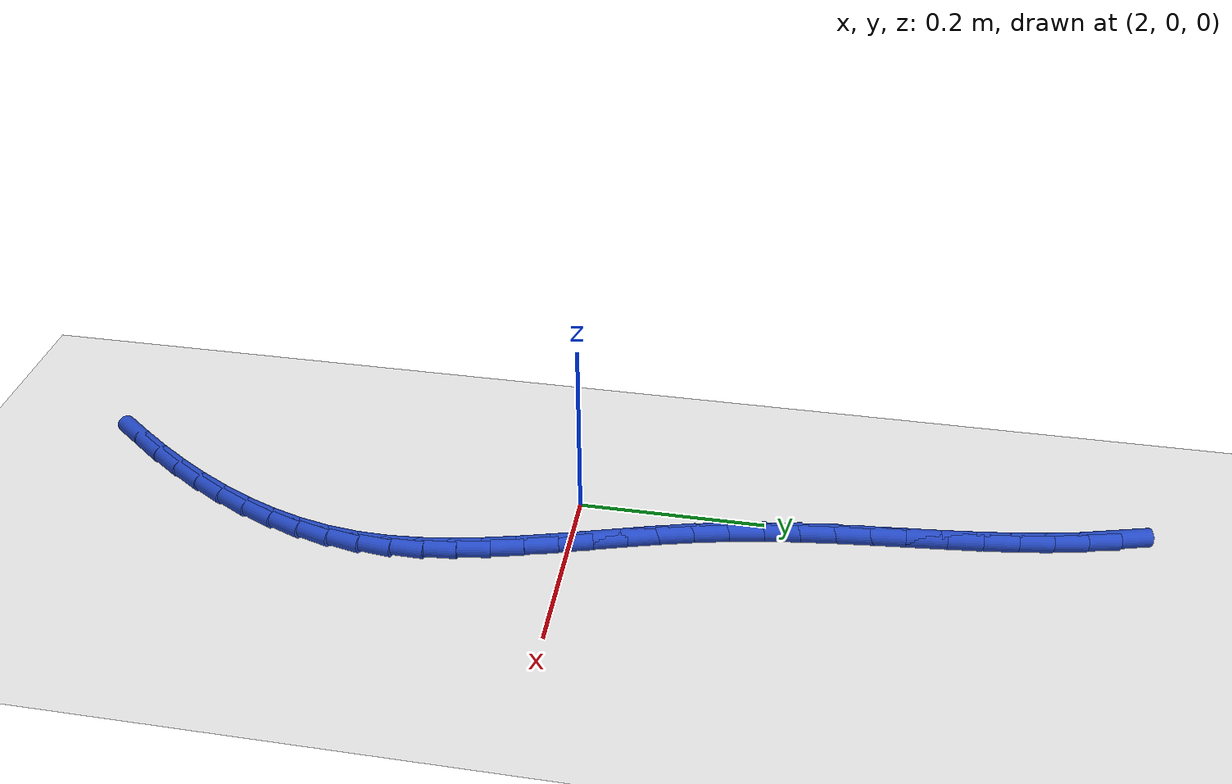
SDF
<sdf version="1.6">
 <world name="default">
  <model name="ground_plane">
   <static>1</static>
   <link name="link">
    <collision name="collision">
     <geometry><plane><normal>0 0 1</normal><size>100 100</size></plane></geometry>
     <surface><friction><ode><mu>100</mu><mu2>50</mu2></ode></friction></surface>
    </collision>
    <visual name="visual">
     <cast_shadows>0</cast_shadows>
     <geometry><plane><normal>0 0 1</normal><size>100 100</size></plane></geometry>
     <material>
      <script><uri>file://media/materials/scripts/gazebo.material</uri><name>Gazebo/WhiteGlow</name></script>
     </material>
    </visual>
   </link>
  </model>
  <model name="line">
   <link name="link_79">
    <pose>1.9718474011377136 0.5604335310703656 0.01 0 1.57 -1.310990582640275</pose>
    <collision name="collision">
     <geometry><cylinder><radius>0.01</radius><length>0.08</length></cylinder></geometry>
    </collision>
    <visual name="visual">
     <material>
      <script><name>Gazebo/Blue</name><uri>file://media/materials/scripts/gazebo.material</uri></script>
     </material>
     <geometry><cylinder><radius>0.01</radius><length>0.08</length></cylinder></geometry>
    </visual>
   </link>
   <link name="link_80">
    <pose>1.9806159194786548 0.5274460541226066 0.01 0 1.57 -1.368073745830297</pose>
    <collision name="collision">
     <geometry><cylinder><radius>0.01</radius><length>0.08</length></cylinder></geometry>
    </collision>
    <visual name="visual">
     <material>
      <script><name>Gazebo/Blue</name><uri>file://media/materials/scripts/gazebo.material</uri></script>
     </material>
     <geometry><cylinder><radius>0.01</radius><length>0.08</length></cylinder></geometry>
    </visual>
   </link>
   <link name="link_81">
    <pose>1.9876197335854549 0.4933718714449497 0.01 0 1.57 -1.4126947714392184</pose>
    <collision name="collision">
     <geometry><cylinder><radius>0.01</radius><length>0.08</length></cylinder></geometry>
    </collision>
    <visual name="visual">
     <material>
      <script><name>Gazebo/Blue</name><uri>file://media/materials/scripts/gazebo.material</uri></script>
     </material>
     <geometry><cylinder><radius>0.01</radius><length>0.08</length></cylinder></geometry>
    </visual>
   </link>
   <link name="link_82">
    <pose>1.9932003908443252 0.45836853861322663 0.01 0 1.57 -1.445693289339995</pose>
    <collision name="collision">
     <geometry><cylinder><radius>0.01</radius><length>0.08</length></cylinder></geometry>
    </collision>
    <visual name="visual">
     <material>
      <script><name>Gazebo/Blue</name><uri>file://media/materials/scripts/gazebo.material</uri></script>
     </material>
     <geometry><cylinder><radius>0.01</radius><length>0.08</length></cylinder></geometry>
    </visual>
   </link>
   <link name="link_83">
    <pose>1.997699438641478 0.42259361120326927 0.01 0 1.57 -1.4678612770690267</pose>
    <collision name="collision">
     <geometry><cylinder><radius>0.01</radius><length>0.08</length></cylinder></geometry>
    </collision>
    <visual name="visual">
     <material>
      <script><name>Gazebo/Blue</name><uri>file://media/materials/scripts/gazebo.material</uri></script>
     </material>
     <geometry><cylinder><radius>0.01</radius><length>0.08</length></cylinder></geometry>
    </visual>
   </link>
   <link name="link_84">
    <pose>2.001458424363125 0.3862046447909082 0.01 0 1.57 -1.4798434542501462</pose>
    <collision name="collision">
     <geometry><cylinder><radius>0.01</radius><length>0.08</length></cylinder></geometry>
    </collision>
    <visual name="visual">
     <material>
      <script><name>Gazebo/Blue</name><uri>file://media/materials/scripts/gazebo.material</uri></script>
     </material>
     <geometry><cylinder><radius>0.01</radius><length>0.08</length></cylinder></geometry>
    </visual>
   </link>
   <link name="link_85">
    <pose>2.0048188953954775 0.3493591949519752 0.01 0 1.57 -1.4820928658127737</pose>
    <collision name="collision">
     <geometry><cylinder><radius>0.01</radius><length>0.08</length></cylinder></geometry>
    </collision>
    <visual name="visual">
     <material>
      <script><name>Gazebo/Blue</name><uri>file://media/materials/scripts/gazebo.material</uri></script>
     </material>
     <geometry><cylinder><radius>0.01</radius><length>0.08</length></cylinder></geometry>
    </visual>
   </link>
   <link name="link_86">
    <pose>2.0081223991247477 0.3122148172623018 0.01 0 1.57 -1.4748597019320595</pose>
    <collision name="collision">
     <geometry><cylinder><radius>0.01</radius><length>0.08</length></cylinder></geometry>
    </collision>
    <visual name="visual">
     <material>
      <script><name>Gazebo/Blue</name><uri>file://media/materials/scripts/gazebo.material</uri></script>
     </material>
     <geometry><cylinder><radius>0.01</radius><length>0.08</length></cylinder></geometry>
    </visual>
   </link>
   <link name="link_87">
    <pose>2.0117104829371475 0.27492906729771893 0.01 0 1.57 -1.458200778438653</pose>
    <collision name="collision">
     <geometry><cylinder><radius>0.01</radius><length>0.08</length></cylinder></geometry>
    </collision>
    <visual name="visual">
     <material>
      <script><name>Gazebo/Blue</name><uri>file://media/materials/scripts/gazebo.material</uri></script>
     </material>
     <geometry><cylinder><radius>0.01</radius><length>0.08</length></cylinder></geometry>
    </visual>
   </link>
   <link name="link_88">
    <pose>2.015924694218888 0.23765950063405814 0.01 0 1.57 -1.4320052335068707</pose>
    <collision name="collision">
     <geometry><cylinder><radius>0.01</radius><length>0.08</length></cylinder></geometry>
    </collision>
    <visual name="visual">
     <material>
      <script><name>Gazebo/Blue</name><uri>file://media/materials/scripts/gazebo.material</uri></script>
     </material>
     <geometry><cylinder><radius>0.01</radius><length>0.08</length></cylinder></geometry>
    </visual>
   </link>
   <link name="link_89">
    <pose>2.0211065803561823 0.20056367284715093 0.01 0 1.57 -1.3960385786762433</pose>
    <collision name="collision">
     <geometry><cylinder><radius>0.01</radius><length>0.08</length></cylinder></geometry>
    </collision>
    <visual name="visual">
     <material>
      <script><name>Gazebo/Blue</name><uri>file://media/materials/scripts/gazebo.material</uri></script>
     </material>
     <geometry><cylinder><radius>0.01</radius><length>0.08</length></cylinder></geometry>
    </visual>
   </link>
   <link name="link_90">
    <pose>2.0275976826189246 0.16379913798144463 0.01 0 1.57 -1.3540749856608922</pose>
    <collision name="collision">
     <geometry><cylinder><radius>0.01</radius><length>0.08</length></cylinder></geometry>
    </collision>
    <visual name="visual">
     <material>
      <script><name>Gazebo/Blue</name><uri>file://media/materials/scripts/gazebo.material</uri></script>
     </material>
     <geometry><cylinder><radius>0.01</radius><length>0.08</length></cylinder></geometry>
    </visual>
   </link>
   <link name="link_91">
    <pose>2.03559292181869 0.12748673969909746 0.01 0 1.57 -1.3205813483886362</pose>
    <collision name="collision">
     <geometry><cylinder><radius>0.01</radius><length>0.08</length></cylinder></geometry>
    </collision>
    <visual name="visual">
     <material>
      <script><name>Gazebo/Blue</name><uri>file://media/materials/scripts/gazebo.material</uri></script>
     </material>
     <geometry><cylinder><radius>0.01</radius><length>0.08</length></cylinder></geometry>
    </visual>
   </link>
   <link name="link_92">
    <pose>2.044760577369315 0.09161546279849983 0.01 0 1.57 -1.2988771034930866</pose>
    <collision name="collision">
     <geometry><cylinder><radius>0.01</radius><length>0.08</length></cylinder></geometry>
    </collision>
    <visual name="visual">
     <material>
      <script><name>Gazebo/Blue</name><uri>file://media/materials/scripts/gazebo.material</uri></script>
     </material>
     <geometry><cylinder><radius>0.01</radius><length>0.08</length></cylinder></geometry>
    </visual>
   </link>
   <link name="link_93">
    <pose>2.0546507298339844 0.05614469781102788 0.01 0 1.57 -1.2890491829731943</pose>
    <collision name="collision">
     <geometry><cylinder><radius>0.01</radius><length>0.08</length></cylinder></geometry>
    </collision>
    <visual name="visual">
     <material>
      <script><name>Gazebo/Blue</name><uri>file://media/materials/scripts/gazebo.material</uri></script>
     </material>
     <geometry><cylinder><radius>0.01</radius><length>0.08</length></cylinder></geometry>
    </visual>
   </link>
   <link name="link_94">
    <pose>2.064813459775885 0.021033835268056515 0.01 0 1.57 -1.2913028820206467</pose>
    <collision name="collision">
     <geometry><cylinder><radius>0.01</radius><length>0.08</length></cylinder></geometry>
    </collision>
    <visual name="visual">
     <material>
      <script><name>Gazebo/Blue</name><uri>file://media/materials/scripts/gazebo.material</uri></script>
     </material>
     <geometry><cylinder><radius>0.01</radius><length>0.08</length></cylinder></geometry>
    </visual>
   </link>
   <link name="link_95">
    <pose>2.074798847758202 -0.013757734299038163 0.01 0 1.57 -1.306014087798718</pose>
    <collision name="collision">
     <geometry><cylinder><radius>0.01</radius><length>0.08</length></cylinder></geometry>
    </collision>
    <visual name="visual">
     <material>
      <script><name>Gazebo/Blue</name><uri>file://media/materials/scripts/gazebo.material</uri></script>
     </material>
     <geometry><cylinder><radius>0.01</radius><length>0.08</length></cylinder></geometry>
    </visual>
   </link>
   <link name="link_96">
    <pose>2.0841569743441224 -0.04827062035888042 0.01 0 1.57 -1.3337348697897142</pose>
    <collision name="collision">
     <geometry><cylinder><radius>0.01</radius><length>0.08</length></cylinder></geometry>
    </collision>
    <visual name="visual">
     <material>
      <script><name>Gazebo/Blue</name><uri>file://media/materials/scripts/gazebo.material</uri></script>
     </material>
     <geometry><cylinder><radius>0.01</radius><length>0.08</length></cylinder></geometry>
    </visual>
   </link>
   <link name="link_97">
    <pose>2.0924379200968306 -0.08254543238009457 0.01 0 1.57 -1.3751401748338485</pose>
    <collision name="collision">
     <geometry><cylinder><radius>0.01</radius><length>0.08</length></cylinder></geometry>
    </collision>
    <visual name="visual">
     <material>
      <script><name>Gazebo/Blue</name><uri>file://media/materials/scripts/gazebo.material</uri></script>
     </material>
     <geometry><cylinder><radius>0.01</radius><length>0.08</length></cylinder></geometry>
    </visual>
   </link>
   <link name="link_98">
    <pose>2.0991917655795143 -0.11662277983130422 0.01 0 1.57 -1.4308921329676663</pose>
    <collision name="collision">
     <geometry><cylinder><radius>0.01</radius><length>0.08</length></cylinder></geometry>
    </collision>
    <visual name="visual">
     <material>
      <script><name>Gazebo/Blue</name><uri>file://media/materials/scripts/gazebo.material</uri></script>
     </material>
     <geometry><cylinder><radius>0.01</radius><length>0.08</length></cylinder></geometry>
    </visual>
   </link>
   <link name="link_99">
    <pose>2.103968591355358 -0.150543272181135 0.01 0 1.57 -1.501393435140677</pose>
    <collision name="collision">
     <geometry><cylinder><radius>0.01</radius><length>0.08</length></cylinder></geometry>
    </collision>
    <visual name="visual">
     <material>
      <script><name>Gazebo/Blue</name><uri>file://media/materials/scripts/gazebo.material</uri></script>
     </material>
     <geometry><cylinder><radius>0.01</radius><length>0.08</length></cylinder></geometry>
    </visual>
   </link>
   <link name="link_100">
    <pose>2.106318477987549 -0.1843475188982106 0.01 0 1.57 1.5551737124343596</pose>
    <collision name="collision">
     <geometry><cylinder><radius>0.01</radius><length>0.08</length></cylinder></geometry>
    </collision>
    <visual name="visual">
     <material>
      <script><name>Gazebo/Blue</name><uri>file://media/materials/scripts/gazebo.material</uri></script>
     </material>
     <geometry><cylinder><radius>0.01</radius><length>0.08</length></cylinder></geometry>
    </visual>
   </link>
   <link name="link_101">
    <pose>2.1057915060392736 -0.2180761294511553 0.01 0 1.57 1.4592120469555023</pose>
    <collision name="collision">
     <geometry><cylinder><radius>0.01</radius><length>0.08</length></cylinder></geometry>
    </collision>
    <visual name="visual">
     <material>
      <script><name>Gazebo/Blue</name><uri>file://media/materials/scripts/gazebo.material</uri></script>
     </material>
     <geometry><cylinder><radius>0.01</radius><length>0.08</length></cylinder></geometry>
    </visual>
   </link>
   <link name="link_102">
    <pose>2.1020176512418858 -0.251756312412121 0.01 0 1.57 1.3677379419934794</pose>
    <collision name="collision">
     <geometry><cylinder><radius>0.01</radius><length>0.08</length></cylinder></geometry>
    </collision>
    <visual name="visual">
     <material>
      <script><name>Gazebo/Blue</name><uri>file://media/materials/scripts/gazebo.material</uri></script>
     </material>
     <geometry><cylinder><radius>0.01</radius><length>0.08</length></cylinder></geometry>
    </visual>
   </link>
   <link name="link_103">
    <pose>2.095103875340456 -0.28533527101207284 0.01 0 1.57 1.286170203673188</pose>
    <collision name="collision">
     <geometry><cylinder><radius>0.01</radius><length>0.08</length></cylinder></geometry>
    </collision>
    <visual name="visual">
     <material>
      <script><name>Gazebo/Blue</name><uri>file://media/materials/scripts/gazebo.material</uri></script>
     </material>
     <geometry><cylinder><radius>0.01</radius><length>0.08</length></cylinder></geometry>
    </visual>
   </link>
   <link name="link_104">
    <pose>2.0853334018109346 -0.318730643925549 0.01 0 1.57 1.2141404615179374</pose>
    <collision name="collision">
     <geometry><cylinder><radius>0.01</radius><length>0.08</length></cylinder></geometry>
    </collision>
    <visual name="visual">
     <material>
      <script><name>Gazebo/Blue</name><uri>file://media/materials/scripts/gazebo.material</uri></script>
     </material>
     <geometry><cylinder><radius>0.01</radius><length>0.08</length></cylinder></geometry>
    </visual>
   </link>
   <link name="link_105">
    <pose>2.072989736307974 -0.3518600224969714 0.01 0 1.57 1.1509421181993258</pose>
    <collision name="collision">
     <geometry><cylinder><radius>0.01</radius><length>0.08</length></cylinder></geometry>
    </collision>
    <visual name="visual">
     <material>
      <script><name>Gazebo/Blue</name><uri>file://media/materials/scripts/gazebo.material</uri></script>
     </material>
     <geometry><cylinder><radius>0.01</radius><length>0.08</length></cylinder></geometry>
    </visual>
   </link>
   <link name="link_106">
    <pose>2.0583563844862236 -0.3846409980707642 0.01 0 1.57 1.0957292160969216</pose>
    <collision name="collision">
     <geometry><cylinder><radius>0.01</radius><length>0.08</length></cylinder></geometry>
    </collision>
    <visual name="visual">
     <material>
      <script><name>Gazebo/Blue</name><uri>file://media/materials/scripts/gazebo.material</uri></script>
     </material>
     <geometry><cylinder><radius>0.01</radius><length>0.08</length></cylinder></geometry>
    </visual>
   </link>
   <link name="link_107">
    <pose>2.041716852000336 -0.41699116199134934 0.01 0 1.57 1.0476419713817118</pose>
    <collision name="collision">
     <geometry><cylinder><radius>0.01</radius><length>0.08</length></cylinder></geometry>
    </collision>
    <visual name="visual">
     <material>
      <script><name>Gazebo/Blue</name><uri>file://media/materials/scripts/gazebo.material</uri></script>
     </material>
     <geometry><cylinder><radius>0.01</radius><length>0.08</length></cylinder></geometry>
    </visual>
   </link>
   <link name="link_108">
    <pose>2.0233546445049604 -0.4488281056031492 0.01 0 1.57 1.0058795108670702</pose>
    <collision name="collision">
     <geometry><cylinder><radius>0.01</radius><length>0.08</length></cylinder></geometry>
    </collision>
    <visual name="visual">
     <material>
      <script><name>Gazebo/Blue</name><uri>file://media/materials/scripts/gazebo.material</uri></script>
     </material>
     <geometry><cylinder><radius>0.01</radius><length>0.08</length></cylinder></geometry>
    </visual>
   </link>
   <link name="link_109">
    <pose>2.0035532676547487 -0.48006942025058663 0.01 0 1.57 0.969736706987111</pose>
    <collision name="collision">
     <geometry><cylinder><radius>0.01</radius><length>0.08</length></cylinder></geometry>
    </collision>
    <visual name="visual">
     <material>
      <script><name>Gazebo/Blue</name><uri>file://media/materials/scripts/gazebo.material</uri></script>
     </material>
     <geometry><cylinder><radius>0.01</radius><length>0.08</length></cylinder></geometry>
    </visual>
   </link>
   <link name="link_110">
    <pose>1.9825962271043525 -0.5106326972780844 0.01 0 1.57 0.9386196397698692</pose>
    <collision name="collision">
     <geometry><cylinder><radius>0.01</radius><length>0.08</length></cylinder></geometry>
    </collision>
    <visual name="visual">
     <material>
      <script><name>Gazebo/Blue</name><uri>file://media/materials/scripts/gazebo.material</uri></script>
     </material>
     <geometry><cylinder><radius>0.01</radius><length>0.08</length></cylinder></geometry>
    </visual>
   </link>
  </model>
 </world>
</sdf>
